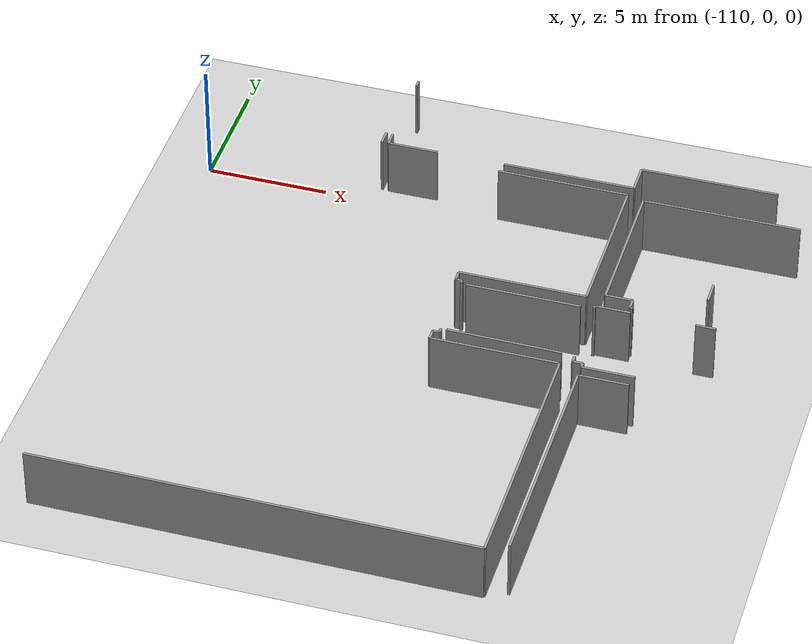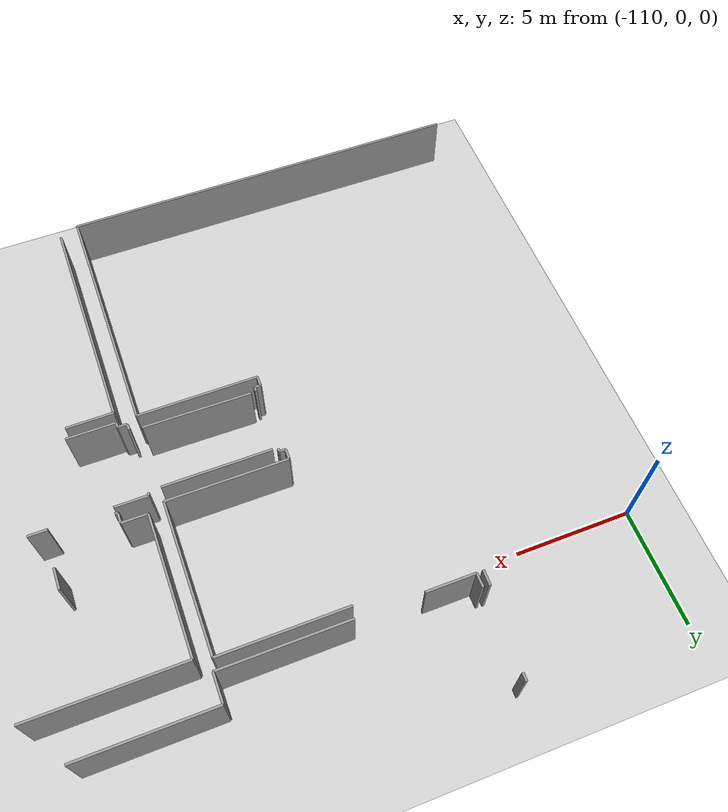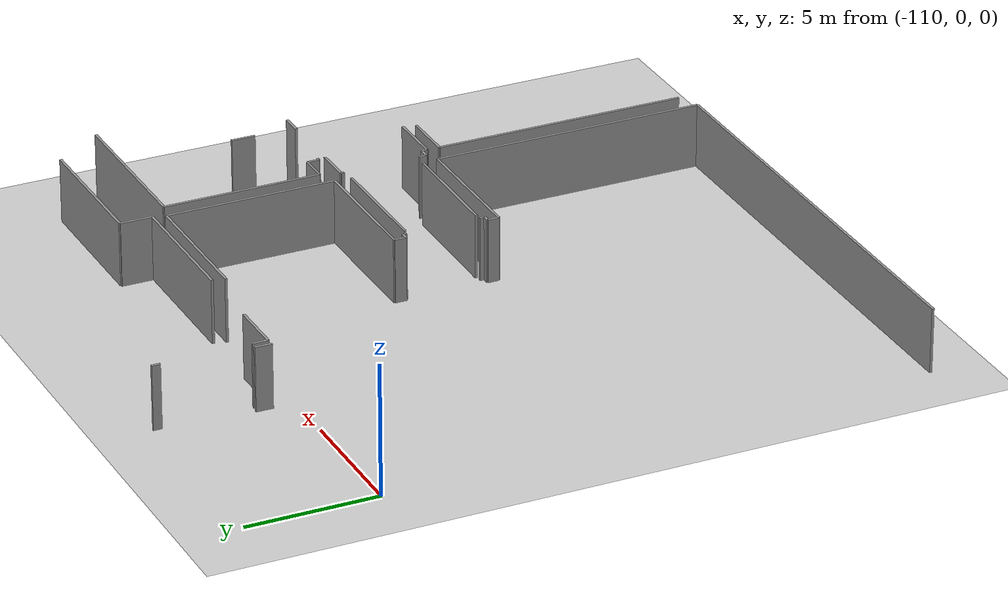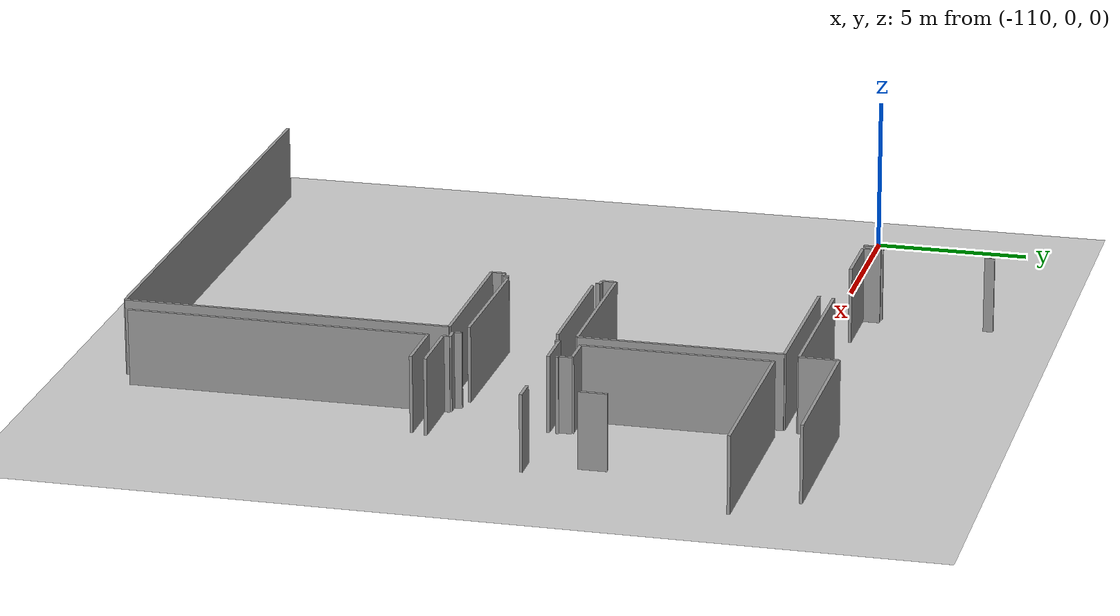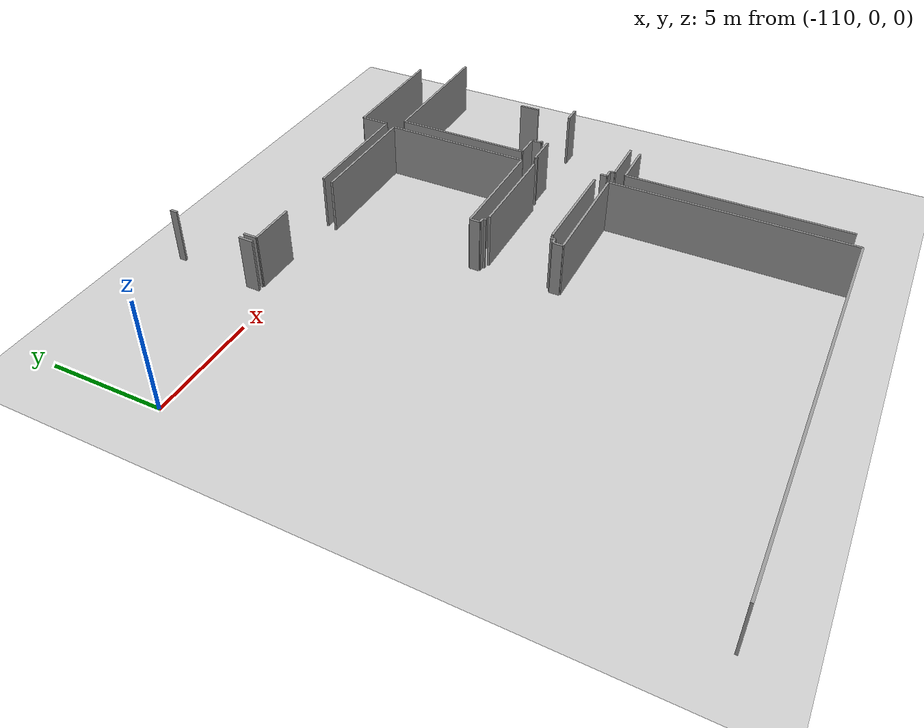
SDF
<sdf version="1.6">
 <world name="default">
  <model name="ground_plane">
   <static>1</static>
   <link name="link">
    <collision name="collision">
     <geometry><plane><normal>0 0 1</normal><size>100 100</size></plane></geometry>
     <surface><friction><ode><mu>100</mu><mu2>50</mu2></ode></friction></surface>
    </collision>
    <visual name="visual">
     <cast_shadows>0</cast_shadows>
     <geometry><plane><normal>0 0 1</normal><size>100 100</size></plane></geometry>
     <material>
      <script><uri>file://media/materials/scripts/gazebo.material</uri><name>Gazebo/Grey</name></script>
     </material>
    </visual>
   </link>
  </model>
  <model name="50037764_PLAN1">
   <static>1</static>
   <link name="Wall_23">
    <collision name="Wall_23_Collision">
     <geometry><box><size>0.6468328719 0.1 2.5</size></box></geometry>
     <pose>0.32341643595 0 1.25 0 0 0</pose>
    </collision>
    <visual name="Wall_23_Visual">
     <pose>0.32341643595 0 1.25 0 0 0</pose>
     <geometry><box><size>0.6468328719 0.1 2.5</size></box></geometry>
     <material>
      <script><uri>file://media/materials/scripts/gazebo.material</uri><name>Gazebo/Grey</name></script>
      <ambient>1 1 1 1</ambient>
     </material>
    </visual>
    <pose>32.2949819513 -19.3750317759 0 0 0 -1.59084081167</pose>
   </link>
   <link name="Wall_33">
    <collision name="Wall_33_Collision">
     <geometry><box><size>17.8649143322 0.1 2.5</size></box></geometry>
     <pose>8.9324571661 0 1.25 0 0 0</pose>
    </collision>
    <visual name="Wall_33_Visual">
     <pose>8.9324571661 0 1.25 0 0 0</pose>
     <geometry><box><size>17.8649143322 0.1 2.5</size></box></geometry>
     <material>
      <script><uri>file://media/materials/scripts/gazebo.material</uri><name>Gazebo/Grey</name></script>
      <ambient>1 1 1 1</ambient>
     </material>
    </visual>
    <pose>42.7660277594 -41.6410341146 0 0 0 3.14159265359</pose>
   </link>
   <link name="Wall_38">
    <collision name="Wall_38_Collision">
     <geometry><box><size>5.39681732676 0.1 2.5</size></box></geometry>
     <pose>2.69840866338 0 1.25 0 0 0</pose>
    </collision>
    <visual name="Wall_38_Visual">
     <pose>2.69840866338 0 1.25 0 0 0</pose>
     <geometry><box><size>5.39681732676 0.1 2.5</size></box></geometry>
     <material>
      <script><uri>file://media/materials/scripts/gazebo.material</uri><name>Gazebo/Grey</name></script>
      <ambient>1 1 1 1</ambient>
     </material>
    </visual>
    <pose>37.3509075194 -20.4775280899 0 0 0 0.0</pose>
   </link>
   <link name="Wall_39">
    <collision name="Wall_39_Collision">
     <geometry><box><size>6.53896995272 0.1 2.5</size></box></geometry>
     <pose>3.26948497636 0 1.25 0 0 0</pose>
    </collision>
    <visual name="Wall_39_Visual">
     <pose>3.26948497636 0 1.25 0 0 0</pose>
     <geometry><box><size>6.53896995272 0.1 2.5</size></box></geometry>
     <material>
      <script><uri>file://media/materials/scripts/gazebo.material</uri><name>Gazebo/Grey</name></script>
      <ambient>1 1 1 1</ambient>
     </material>
    </visual>
    <pose>42.7477248462 -20.4775280899 0 0 0 -1.57079632679</pose>
   </link>
   <link name="Wall_40">
    <collision name="Wall_40_Collision">
     <geometry><box><size>5.17209822563 0.1 2.5</size></box></geometry>
     <pose>2.58604911282 0 1.25 0 0 0</pose>
    </collision>
    <visual name="Wall_40_Visual">
     <pose>2.58604911282 0 1.25 0 0 0</pose>
     <geometry><box><size>5.17209822563 0.1 2.5</size></box></geometry>
     <material>
      <script><uri>file://media/materials/scripts/gazebo.material</uri><name>Gazebo/Grey</name></script>
      <ambient>1 1 1 1</ambient>
     </material>
    </visual>
    <pose>42.7477248462 -27.0164980426 0 0 0 3.14159265359</pose>
   </link>
   <link name="Wall_41">
    <collision name="Wall_41_Collision">
     <geometry><box><size>0.450963445015 0.1 2.5</size></box></geometry>
     <pose>0.225481722507 0 1.25 0 0 0</pose>
    </collision>
    <visual name="Wall_41_Visual">
     <pose>0.225481722507 0 1.25 0 0 0</pose>
     <geometry><box><size>0.450963445015 0.1 2.5</size></box></geometry>
     <material>
      <script><uri>file://media/materials/scripts/gazebo.material</uri><name>Gazebo/Grey</name></script>
      <ambient>1 1 1 1</ambient>
     </material>
    </visual>
    <pose>37.5756266206 -27.0164980426 0 0 0 -1.57079632679</pose>
   </link>
   <link name="Wall_42">
    <collision name="Wall_42_Collision">
     <geometry><box><size>0.265900655854 0.1 2.5</size></box></geometry>
     <pose>0.132950327927 0 1.25 0 0 0</pose>
    </collision>
    <visual name="Wall_42_Visual">
     <pose>0.132950327927 0 1.25 0 0 0</pose>
     <geometry><box><size>0.265900655854 0.1 2.5</size></box></geometry>
     <material>
      <script><uri>file://media/materials/scripts/gazebo.material</uri><name>Gazebo/Grey</name></script>
      <ambient>1 1 1 1</ambient>
     </material>
    </visual>
    <pose>37.5756266206 -27.4674614876 0 0 0 0.0</pose>
   </link>
   <link name="Wall_43">
    <collision name="Wall_43_Collision">
     <geometry><box><size>0.14133916315 0.1 2.5</size></box></geometry>
     <pose>0.0706695815751 0 1.25 0 0 0</pose>
    </collision>
    <visual name="Wall_43_Visual">
     <pose>0.0706695815751 0 1.25 0 0 0</pose>
     <geometry><box><size>0.14133916315 0.1 2.5</size></box></geometry>
     <material>
      <script><uri>file://media/materials/scripts/gazebo.material</uri><name>Gazebo/Grey</name></script>
      <ambient>1 1 1 1</ambient>
     </material>
    </visual>
    <pose>37.8415272764 -27.4674614876 0 0 0 -1.57079632679</pose>
   </link>
   <link name="Wall_44">
    <collision name="Wall_44_Collision">
     <geometry><box><size>0.200569423967 0.1 2.5</size></box></geometry>
     <pose>0.100284711983 0 1.25 0 0 0</pose>
    </collision>
    <visual name="Wall_44_Visual">
     <pose>0.100284711983 0 1.25 0 0 0</pose>
     <geometry><box><size>0.200569423967 0.1 2.5</size></box></geometry>
     <material>
      <script><uri>file://media/materials/scripts/gazebo.material</uri><name>Gazebo/Grey</name></script>
      <ambient>1 1 1 1</ambient>
     </material>
    </visual>
    <pose>37.8415272764 -30.4513447557 0 0 0 -1.57079632679</pose>
   </link>
   <link name="Wall_45">
    <collision name="Wall_45_Collision">
     <geometry><box><size>0.258782856271 0.1 2.5</size></box></geometry>
     <pose>0.129391428136 0 1.25 0 0 0</pose>
    </collision>
    <visual name="Wall_45_Visual">
     <pose>0.129391428136 0 1.25 0 0 0</pose>
     <geometry><box><size>0.258782856271 0.1 2.5</size></box></geometry>
     <material>
      <script><uri>file://media/materials/scripts/gazebo.material</uri><name>Gazebo/Grey</name></script>
      <ambient>1 1 1 1</ambient>
     </material>
    </visual>
    <pose>37.8415272764 -30.6519141797 0 0 0 3.14159265359</pose>
   </link>
   <link name="Wall_46">
    <collision name="Wall_46_Collision">
     <geometry><box><size>0.439524124256 0.1 2.5</size></box></geometry>
     <pose>0.219762062128 0 1.25 0 0 0</pose>
    </collision>
    <visual name="Wall_46_Visual">
     <pose>0.219762062128 0 1.25 0 0 0</pose>
     <geometry><box><size>0.439524124256 0.1 2.5</size></box></geometry>
     <material>
      <script><uri>file://media/materials/scripts/gazebo.material</uri><name>Gazebo/Grey</name></script>
      <ambient>1 1 1 1</ambient>
     </material>
    </visual>
    <pose>37.5827444202 -30.6519141797 0 0 0 -1.57079632679</pose>
   </link>
   <link name="Wall_47">
    <collision name="Wall_47_Collision">
     <geometry><box><size>5.17947023235 0.1 2.5</size></box></geometry>
     <pose>2.58973511617 0 1.25 0 0 0</pose>
    </collision>
    <visual name="Wall_47_Visual">
     <pose>2.58973511617 0 1.25 0 0 0</pose>
     <geometry><box><size>5.17947023235 0.1 2.5</size></box></geometry>
     <material>
      <script><uri>file://media/materials/scripts/gazebo.material</uri><name>Gazebo/Grey</name></script>
      <ambient>1 1 1 1</ambient>
     </material>
    </visual>
    <pose>37.5827444202 -31.0914383039 0 0 0 0.0</pose>
   </link>
   <link name="Wall_48">
    <collision name="Wall_48_Collision">
     <geometry><box><size>10.5495964998 0.1 2.5</size></box></geometry>
     <pose>5.27479824989 0 1.25 0 0 0</pose>
    </collision>
    <visual name="Wall_48_Visual">
     <pose>5.27479824989 0 1.25 0 0 0</pose>
     <geometry><box><size>10.5495964998 0.1 2.5</size></box></geometry>
     <material>
      <script><uri>file://media/materials/scripts/gazebo.material</uri><name>Gazebo/Grey</name></script>
      <ambient>1 1 1 1</ambient>
     </material>
    </visual>
    <pose>42.7622146525 -31.0914383039 0 0 0 -1.57043488103</pose>
   </link>
   <link name="Wall_49">
    <collision name="Wall_49_Collision">
     <geometry><box><size>4.62656972902 0.1 2.5</size></box></geometry>
     <pose>2.31328486451 0 1.25 0 0 0</pose>
    </collision>
    <visual name="Wall_49_Visual">
     <pose>2.31328486451 0 1.25 0 0 0</pose>
     <geometry><box><size>4.62656972902 0.1 2.5</size></box></geometry>
     <material>
      <script><uri>file://media/materials/scripts/gazebo.material</uri><name>Gazebo/Grey</name></script>
      <ambient>1 1 1 1</ambient>
     </material>
    </visual>
    <pose>42.6862067212 -27.6502364126 0 0 0 3.14159265359</pose>
   </link>
   <link name="Wall_50">
    <collision name="Wall_50_Collision">
     <geometry><box><size>4.62682449481 0.1 2.5</size></box></geometry>
     <pose>2.3134122474 0 1.25 0 0 0</pose>
    </collision>
    <visual name="Wall_50_Visual">
     <pose>2.3134122474 0 1.25 0 0 0</pose>
     <geometry><box><size>4.62682449481 0.1 2.5</size></box></geometry>
     <material>
      <script><uri>file://media/materials/scripts/gazebo.material</uri><name>Gazebo/Grey</name></script>
      <ambient>1 1 1 1</ambient>
     </material>
    </visual>
    <pose>38.0596369922 -30.4355839138 0 0 0 -0.0104941202504</pose>
   </link>
   <link name="Wall_53">
    <collision name="Wall_53_Collision">
     <geometry><box><size>2.10991916213 0.1 2.5</size></box></geometry>
     <pose>1.05495958107 0 1.25 0 0 0</pose>
    </collision>
    <visual name="Wall_53_Visual">
     <pose>1.05495958107 0 1.25 0 0 0</pose>
     <geometry><box><size>2.10991916213 0.1 2.5</size></box></geometry>
     <material>
      <script><uri>file://media/materials/scripts/gazebo.material</uri><name>Gazebo/Grey</name></script>
      <ambient>1 1 1 1</ambient>
     </material>
    </visual>
    <pose>45.7247445218 -31.0718643551 0 0 0 3.14159265359</pose>
   </link>
   <link name="Wall_54">
    <collision name="Wall_54_Collision">
     <geometry><box><size>0.219126544308 0.1 2.5</size></box></geometry>
     <pose>0.109563272154 0 1.25 0 0 0</pose>
    </collision>
    <visual name="Wall_54_Visual">
     <pose>0.109563272154 0 1.25 0 0 0</pose>
     <geometry><box><size>0.219126544308 0.1 2.5</size></box></geometry>
     <material>
      <script><uri>file://media/materials/scripts/gazebo.material</uri><name>Gazebo/Grey</name></script>
      <ambient>1 1 1 1</ambient>
     </material>
    </visual>
    <pose>43.6148253597 -31.0718643551 0 0 0 1.57079632679</pose>
   </link>
   <link name="Wall_55">
    <collision name="Wall_55_Collision">
     <geometry><box><size>0.403426712085 0.1 2.5</size></box></geometry>
     <pose>0.201713356043 0 1.25 0 0 0</pose>
    </collision>
    <visual name="Wall_55_Visual">
     <pose>0.201713356043 0 1.25 0 0 0</pose>
     <geometry><box><size>0.403426712085 0.1 2.5</size></box></geometry>
     <material>
      <script><uri>file://media/materials/scripts/gazebo.material</uri><name>Gazebo/Grey</name></script>
      <ambient>1 1 1 1</ambient>
     </material>
    </visual>
    <pose>43.6148253597 -30.8527378108 0 0 0 3.14159265359</pose>
   </link>
   <link name="Wall_56">
    <collision name="Wall_56_Collision">
     <geometry><box><size>0.286237226092 0.1 2.5</size></box></geometry>
     <pose>0.143118613046 0 1.25 0 0 0</pose>
    </collision>
    <visual name="Wall_56_Visual">
     <pose>0.143118613046 0 1.25 0 0 0</pose>
     <geometry><box><size>0.286237226092 0.1 2.5</size></box></geometry>
     <material>
      <script><uri>file://media/materials/scripts/gazebo.material</uri><name>Gazebo/Grey</name></script>
      <ambient>1 1 1 1</ambient>
     </material>
    </visual>
    <pose>43.2113986476 -30.8527378108 0 0 0 1.57079632679</pose>
   </link>
   <link name="Wall_57">
    <collision name="Wall_57_Collision">
     <geometry><box><size>0.124307285576 0.1 2.5</size></box></geometry>
     <pose>0.0621536427881 0 1.25 0 0 0</pose>
    </collision>
    <visual name="Wall_57_Visual">
     <pose>0.0621536427881 0 1.25 0 0 0</pose>
     <geometry><box><size>0.124307285576 0.1 2.5</size></box></geometry>
     <material>
      <script><uri>file://media/materials/scripts/gazebo.material</uri><name>Gazebo/Grey</name></script>
      <ambient>1 1 1 1</ambient>
     </material>
    </visual>
    <pose>43.2113986476 -27.5938024302 0 0 0 1.57079632679</pose>
   </link>
   <link name="Wall_58">
    <collision name="Wall_58_Collision">
     <geometry><box><size>1.42406833088 0.1 2.5</size></box></geometry>
     <pose>0.712034165438 0 1.25 0 0 0</pose>
    </collision>
    <visual name="Wall_58_Visual">
     <pose>0.712034165438 0 1.25 0 0 0</pose>
     <geometry><box><size>1.42406833088 0.1 2.5</size></box></geometry>
     <material>
      <script><uri>file://media/materials/scripts/gazebo.material</uri><name>Gazebo/Grey</name></script>
      <ambient>1 1 1 1</ambient>
     </material>
    </visual>
    <pose>43.2113986476 -27.4694951446 0 0 0 0.0</pose>
   </link>
   <link name="Wall_59">
    <collision name="Wall_59_Collision">
     <geometry><box><size>0.808887081194 0.1 2.5</size></box></geometry>
     <pose>0.404443540597 0 1.25 0 0 0</pose>
    </collision>
    <visual name="Wall_59_Visual">
     <pose>0.404443540597 0 1.25 0 0 0</pose>
     <geometry><box><size>0.808887081194 0.1 2.5</size></box></geometry>
     <material>
      <script><uri>file://media/materials/scripts/gazebo.material</uri><name>Gazebo/Grey</name></script>
      <ambient>1 1 1 1</ambient>
     </material>
    </visual>
    <pose>47.2217702984 -27.4694951446 0 0 0 0.0</pose>
   </link>
   <link name="Wall_74">
    <collision name="Wall_74_Collision">
     <geometry><box><size>0.921500838884 0.1 2.5</size></box></geometry>
     <pose>0.460750419442 0 1.25 0 0 0</pose>
    </collision>
    <visual name="Wall_74_Visual">
     <pose>0.460750419442 0 1.25 0 0 0</pose>
     <geometry><box><size>0.921500838884 0.1 2.5</size></box></geometry>
     <material>
      <script><uri>file://media/materials/scripts/gazebo.material</uri><name>Gazebo/Grey</name></script>
      <ambient>1 1 1 1</ambient>
     </material>
    </visual>
    <pose>47.3399766129 -24.9505567136 0 0 0 -1.57079632679</pose>
   </link>
   <link name="Wall_77">
    <collision name="Wall_77_Collision">
     <geometry><box><size>0.122782042808 0.1 2.5</size></box></geometry>
     <pose>0.0613910214042 0 1.25 0 0 0</pose>
    </collision>
    <visual name="Wall_77_Visual">
     <pose>0.0613910214042 0 1.25 0 0 0</pose>
     <geometry><box><size>0.122782042808 0.1 2.5</size></box></geometry>
     <material>
      <script><uri>file://media/materials/scripts/gazebo.material</uri><name>Gazebo/Grey</name></script>
      <ambient>1 1 1 1</ambient>
     </material>
    </visual>
    <pose>44.660379277 -27.1850373684 0 0 0 3.14159265359</pose>
   </link>
   <link name="Wall_78">
    <collision name="Wall_78_Collision">
     <geometry><box><size>0.452488687783 0.1 2.5</size></box></geometry>
     <pose>0.226244343891 0 1.25 0 0 0</pose>
    </collision>
    <visual name="Wall_78_Visual">
     <pose>0.226244343891 0 1.25 0 0 0</pose>
     <geometry><box><size>0.452488687783 0.1 2.5</size></box></geometry>
     <material>
      <script><uri>file://media/materials/scripts/gazebo.material</uri><name>Gazebo/Grey</name></script>
      <ambient>1 1 1 1</ambient>
     </material>
    </visual>
    <pose>44.5375972342 -27.1850373684 0 0 0 1.57079632679</pose>
   </link>
   <link name="Wall_79">
    <collision name="Wall_79_Collision">
     <geometry><box><size>1.09842899995 0.1 2.5</size></box></geometry>
     <pose>0.549214499975 0 1.25 0 0 0</pose>
    </collision>
    <visual name="Wall_79_Visual">
     <pose>0.549214499975 0 1.25 0 0 0</pose>
     <geometry><box><size>1.09842899995 0.1 2.5</size></box></geometry>
     <material>
      <script><uri>file://media/materials/scripts/gazebo.material</uri><name>Gazebo/Grey</name></script>
      <ambient>1 1 1 1</ambient>
     </material>
    </visual>
    <pose>44.5375972342 -26.7325486807 0 0 0 3.14159265359</pose>
   </link>
   <link name="Wall_80">
    <collision name="Wall_80_Collision">
     <geometry><box><size>6.06258579491 0.1 2.5</size></box></geometry>
     <pose>3.03129289745 0 1.25 0 0 0</pose>
    </collision>
    <visual name="Wall_80_Visual">
     <pose>3.03129289745 0 1.25 0 0 0</pose>
     <geometry><box><size>6.06258579491 0.1 2.5</size></box></geometry>
     <material>
      <script><uri>file://media/materials/scripts/gazebo.material</uri><name>Gazebo/Grey</name></script>
      <ambient>1 1 1 1</ambient>
     </material>
    </visual>
    <pose>43.4391682343 -26.7325486807 0 0 0 1.57079632679</pose>
   </link>
   <link name="Wall_81">
    <collision name="Wall_81_Collision">
     <geometry><box><size>6.43525344451 0.1 2.5</size></box></geometry>
     <pose>3.21762672225 0 1.25 0 0 0</pose>
    </collision>
    <visual name="Wall_81_Visual">
     <pose>3.21762672225 0 1.25 0 0 0</pose>
     <geometry><box><size>6.43525344451 0.1 2.5</size></box></geometry>
     <material>
      <script><uri>file://media/materials/scripts/gazebo.material</uri><name>Gazebo/Grey</name></script>
      <ambient>1 1 1 1</ambient>
     </material>
    </visual>
    <pose>43.4391682343 -20.6699628858 0 0 0 0.0</pose>
   </link>
   <link name="Wall_94">
    <collision name="Wall_94_Collision">
     <geometry><box><size>9.72266002339 0.1 2.5</size></box></geometry>
     <pose>4.86133001169 0 1.25 0 0 0</pose>
    </collision>
    <visual name="Wall_94_Visual">
     <pose>4.86133001169 0 1.25 0 0 0</pose>
     <geometry><box><size>9.72266002339 0.1 2.5</size></box></geometry>
     <material>
      <script><uri>file://media/materials/scripts/gazebo.material</uri><name>Gazebo/Grey</name></script>
      <ambient>1 1 1 1</ambient>
     </material>
    </visual>
    <pose>43.6033860389 -41.2787889572 0 0 0 1.57079632679</pose>
   </link>
   <link name="Wall_95">
    <collision name="Wall_95_Collision">
     <geometry><box><size>2.01001576084 0.1 2.5</size></box></geometry>
     <pose>1.00500788042 0 1.25 0 0 0</pose>
    </collision>
    <visual name="Wall_95_Visual">
     <pose>1.00500788042 0 1.25 0 0 0</pose>
     <geometry><box><size>2.01001576084 0.1 2.5</size></box></geometry>
     <material>
      <script><uri>file://media/materials/scripts/gazebo.material</uri><name>Gazebo/Grey</name></script>
      <ambient>1 1 1 1</ambient>
     </material>
    </visual>
    <pose>43.6033860389 -31.5561289339 0 0 0 0.0</pose>
   </link>
   <link name="Wall_104">
    <collision name="Wall_104_Collision">
     <geometry><box><size>0.328588133611 0.1 2.5</size></box></geometry>
     <pose>0.164294066806 0 1.25 0 0 0</pose>
    </collision>
    <visual name="Wall_104_Visual">
     <pose>0.164294066806 0 1.25 0 0 0</pose>
     <geometry><box><size>0.328588133611 0.1 2.5</size></box></geometry>
     <material>
      <script><uri>file://media/materials/scripts/gazebo.material</uri><name>Gazebo/Grey</name></script>
      <ambient>1 1 1 1</ambient>
     </material>
    </visual>
    <pose>32.5697798566 -15.6869439219 0 0 0 -1.57079632679</pose>
   </link>
   <link name="Wall_105">
    <collision name="Wall_105_Collision">
     <geometry><box><size>0.594082058061 0.1 2.5</size></box></geometry>
     <pose>0.29704102903 0 1.25 0 0 0</pose>
    </collision>
    <visual name="Wall_105_Visual">
     <pose>0.29704102903 0 1.25 0 0 0</pose>
     <geometry><box><size>0.594082058061 0.1 2.5</size></box></geometry>
     <material>
      <script><uri>file://media/materials/scripts/gazebo.material</uri><name>Gazebo/Grey</name></script>
      <ambient>1 1 1 1</ambient>
     </material>
    </visual>
    <pose>32.5697798566 -19.4037571814 0 0 0 -1.57079632679</pose>
   </link>
   <link name="Wall_106">
    <collision name="Wall_106_Collision">
     <geometry><box><size>2.0895825919 0.1 2.5</size></box></geometry>
     <pose>1.04479129595 0 1.25 0 0 0</pose>
    </collision>
    <visual name="Wall_106_Visual">
     <pose>1.04479129595 0 1.25 0 0 0</pose>
     <geometry><box><size>2.0895825919 0.1 2.5</size></box></geometry>
     <material>
      <script><uri>file://media/materials/scripts/gazebo.material</uri><name>Gazebo/Grey</name></script>
      <ambient>1 1 1 1</ambient>
     </material>
    </visual>
    <pose>32.5697798566 -19.9978392394 0 0 0 0.0</pose>
   </link>
   <link name="Wall_107">
    <collision name="Wall_107_Collision">
     <geometry><box><size>5.4263053536 0.1 2.5</size></box></geometry>
     <pose>2.7131526768 0 1.25 0 0 0</pose>
    </collision>
    <visual name="Wall_107_Visual">
     <pose>2.7131526768 0 1.25 0 0 0</pose>
     <geometry><box><size>5.4263053536 0.1 2.5</size></box></geometry>
     <material>
      <script><uri>file://media/materials/scripts/gazebo.material</uri><name>Gazebo/Grey</name></script>
      <ambient>1 1 1 1</ambient>
     </material>
    </visual>
    <pose>37.4602165845 -19.9978392394 0 0 0 0.0</pose>
   </link>
   <link name="Wall_108">
    <collision name="Wall_108_Collision">
     <geometry><box><size>1.24383547715 0.1 2.5</size></box></geometry>
     <pose>0.621917738573 0 1.25 0 0 0</pose>
    </collision>
    <visual name="Wall_108_Visual">
     <pose>0.621917738573 0 1.25 0 0 0</pose>
     <geometry><box><size>1.24383547715 0.1 2.5</size></box></geometry>
     <material>
      <script><uri>file://media/materials/scripts/gazebo.material</uri><name>Gazebo/Grey</name></script>
      <ambient>1 1 1 1</ambient>
     </material>
    </visual>
    <pose>42.8865219381 -19.9978392394 0 0 0 1.57079632679</pose>
   </link>
   <link name="Wall_109">
    <collision name="Wall_109_Collision">
     <geometry><box><size>5.64797396919 0.1 2.5</size></box></geometry>
     <pose>2.8239869846 0 1.25 0 0 0</pose>
    </collision>
    <visual name="Wall_109_Visual">
     <pose>2.8239869846 0 1.25 0 0 0</pose>
     <geometry><box><size>5.64797396919 0.1 2.5</size></box></geometry>
     <material>
      <script><uri>file://media/materials/scripts/gazebo.material</uri><name>Gazebo/Grey</name></script>
      <ambient>1 1 1 1</ambient>
     </material>
    </visual>
    <pose>42.8865219381 -18.7540037623 0 0 0 0.0</pose>
   </link>
   <pose>-135.1 20.8410341146 0 0 0 0</pose>
  </model>
 </world>
</sdf>
